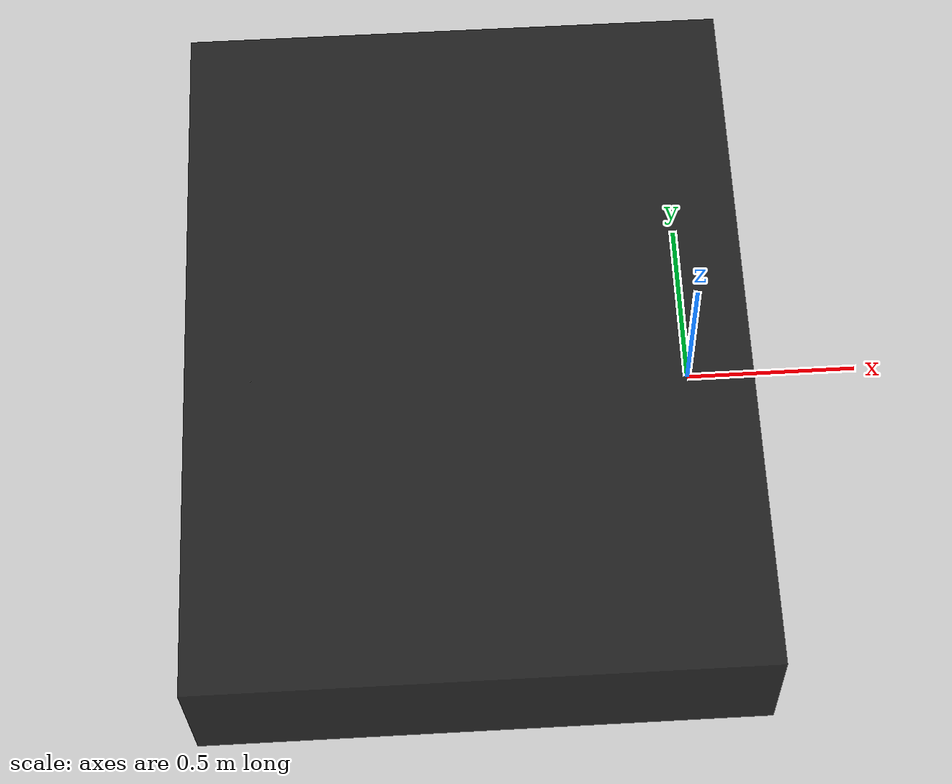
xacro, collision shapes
<?xml version="1.0"?>
<robot xmlns:xacro="http://www.ros.org/wiki/xacro" name="aris">
    <!--
    The meshes are all in the NWU body-relative coordinate system
    except that the origin is offset from the center of mass
    -->

    <xacro:property name="infty" value="${1e9}"/>

    <!-- Needs to be large enough so Gazebo doesn't ignore the links/joints -->
    <xacro:property name="epsilon" value="${1e-3}"/>

    <xacro:macro name="tiny_inertia_collision">
        <inertial>
            <mass value="${epsilon}"/>
            <inertia ixx="${epsilon}" ixy="0" ixz="0"
                     iyy="${epsilon}" iyz="0" izz="${epsilon}"/>
        </inertial>
        <collision>
            <geometry>
                <box size="${epsilon} ${epsilon} ${epsilon}"/>
            </geometry>
        </collision>
    </xacro:macro>

    <material name="black">
        <color rgba="0 0 0 0.8"/>
    </material>

    <material name="gold">
        <color rgba="0.7 0.6 0.4 0.9"/>
    </material>

    <material name="green">
        <color rgba="0.3 0.9 0.2 1"/>
    </material>

    <xacro:macro name="aileron" params="prefix reflect">
        <!-- TODO: compute reflect based on prefix -->
        <link name="${prefix}_aileron">
            <xacro:tiny_inertia_collision/>
            <visual>
                <geometry>
                    <mesh filename="package://bmb_description/meshes/${prefix}_aileron.stl"
                          scale="0.001 0.001 0.001"/>
                </geometry>
                <origin xyz="0.2649 0 -0.1714" rpy="0 0 0"/>
                <material name="gold"/>
            </visual>
        </link>
        <joint name="body_to_${prefix}_aileron" type="revolute">
            <parent link="body"/>
            <child link="${prefix}_aileron"/>
            <origin xyz="-0.2649 0 0.1714" rpy="0 0 0"/>
            <axis xyz="0 1 0"/>
            <limit lower="${radians(-30)}" upper="${radians(30)}" velocity="${infty}" effort="${infty}"/>
        </joint>
    </xacro:macro>

    <link name="body">
        <visual>
            <geometry>
                <!-- All meshes are in mm -->
                <mesh filename="package://bmb_description/meshes/body.stl"
                      scale="0.001 0.001 0.001"/>
            </geometry>
            <material name="black"/>
        </visual>
        <inertial>
            <mass value="3.3"/>
            <inertia ixx="12.327" ixy="0" ixz="0"
                     iyy="1.711" iyz="0" izz="12.659"/>
        </inertial>
        <collision>
            <geometry>
                <box size="1.6 2.1 0.4"/>
            </geometry>
            <origin xyz="-0.65 0 0.15" rpy="0 0 0"/>
        </collision>
    </link>

    <!-- Propeller -->
    <link name="propeller">
        <xacro:tiny_inertia_collision/>
        <visual>
            <geometry>
                <mesh filename="package://bmb_description/meshes/propeller.stl"
                      scale="0.001 0.001 0.001"/>
            </geometry>
            <origin xyz="-0.4244 0 -0.1638" rpy="0 0 0"/>
            <material name="green"/>
        </visual>
    </link>
    <joint name="body_to_propeller" type="continuous">
        <parent link="body"/>
        <child link="propeller"/>
        <origin xyz="0.4244 0 0.1638" rpy="0 0 0"/>
        <axis xyz="1 0 0"/>
    </joint>

    <!-- Ailerons -->
    <xacro:aileron prefix="right" reflect="1"/>
    <xacro:aileron prefix="left" reflect="-1"/>

    <!-- Elevator -->
    <link name="elevator">
        <xacro:tiny_inertia_collision/>
        <visual>
            <geometry>
                <mesh filename="package://bmb_description/meshes/elevator.stl"
                      scale="0.001 0.001 0.001"/>
            </geometry>
            <origin xyz="1.2927 0 -0.1024" rpy="0 0 0"/>
            <material name="gold"/>
        </visual>
    </link>
    <joint name="body_to_elevator" type="revolute">
        <parent link="body"/>
        <child link="elevator"/>
        <origin xyz="-1.2927 0 0.1024" rpy="0 0 0"/>
        <axis xyz="0 1 0"/>
        <limit lower="${radians(-30)}" upper="${radians(30)}" velocity="${infty}" effort="${infty}"/>
    </joint>

    <!-- Turn off gravity for each link since the aris_control plugin will apply it -->
    <gazebo reference="body">
        <gravity>0</gravity>
        <material>Gazebo/Black</material>
    </gazebo>
    <gazebo reference="propeller">
        <gravity>0</gravity>
        <material>Gazebo/Green</material>
    </gazebo>
    <gazebo reference="right_aileron">
        <gravity>0</gravity>
        <material>Gazebo/Gold</material>
    </gazebo>
    <gazebo reference="left_aileron">
        <gravity>0</gravity>
        <material>Gazebo/Gold</material>
    </gazebo>
    <gazebo reference="elevator">
        <gravity>0</gravity>
        <material>Gazebo/Gold</material>
    </gazebo>

    <gazebo>
        <plugin name="aris_control" filename="libaris_control_plugin.so">
            <base_link>body</base_link>
            <propeller>body_to_propeller</propeller>
            <left_aileron>body_to_left_aileron</left_aileron>
            <right_aileron>body_to_right_aileron</right_aileron>
            <elevator>body_to_elevator</elevator>
        </plugin>
    </gazebo>
</robot>
